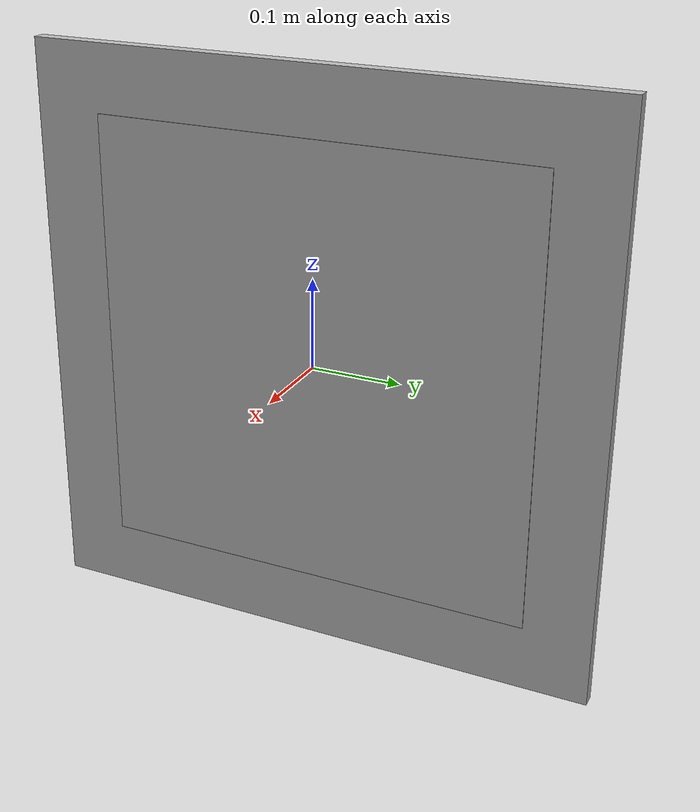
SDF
<?xml version='1.0'?>
<sdf version='1.7'>
  <model name='aruco_combined'>
    <link name='link'>
      <pose>0 0 0 0 -0 0</pose>
      <self_collide>0</self_collide>
      <enable_wind>0</enable_wind>
      <kinematic>0</kinematic>
      <visual name='visual'>
        <geometry>
          <box>
            <size>0.015 0.5 0.5</size>
          </box>
        </geometry>
        <material>
          <script>
            <uri>model://aruco_combined/materials/scripts</uri>
            <uri>model://aruco_combined/materials/textures</uri>
            <name>aruco_combined/Diffuse</name>
          </script>
          <shader type='pixel'/>
        </material>
        <pose>0 0 0 0 -0 0</pose>
        <transparency>0</transparency>
        <cast_shadows>1</cast_shadows>
      </visual>
      <visual name='aruco_frame'>
        <pose>-0.001 0 0 0 -0 0</pose>
        <geometry>
          <box>
            <size>0.015 0.65 0.65</size>
          </box>
        </geometry>
        <material>
          <shader type='pixel'/>
        </material>
        <transparency>0</transparency>
        <cast_shadows>1</cast_shadows>
      </visual>
      <collision name='collision'>
        <laser_retro>0</laser_retro>
        <max_contacts>10</max_contacts>
        <pose>0 0 0 0 -0 0</pose>
        <geometry>
          <box>
            <size>0.015 0.65 0.65</size>
          </box>
        </geometry>
        <surface>
          <friction>
            <ode>
              <mu>1</mu>
              <mu2>1</mu2>
              <fdir1>0 0 0</fdir1>
              <slip1>0</slip1>
              <slip2>0</slip2>
            </ode>
            <torsional>
              <coefficient>1</coefficient>
              <patch_radius>0</patch_radius>
              <surface_radius>0</surface_radius>
              <use_patch_radius>1</use_patch_radius>
              <ode>
                <slip>0</slip>
              </ode>
            </torsional>
          </friction>
          <bounce>
            <restitution_coefficient>0</restitution_coefficient>
            <threshold>1e+06</threshold>
          </bounce>
          <contact>
            <collide_without_contact>0</collide_without_contact>
            <collide_without_contact_bitmask>1</collide_without_contact_bitmask>
            <collide_bitmask>1</collide_bitmask>
            <ode>
              <soft_cfm>0</soft_cfm>
              <soft_erp>0.2</soft_erp>
              <kp>1e+13</kp>
              <kd>1</kd>
              <max_vel>0.01</max_vel>
              <min_depth>0</min_depth>
            </ode>
            <bullet>
              <split_impulse>1</split_impulse>
              <split_impulse_penetration_threshold>-0.01</split_impulse_penetration_threshold>
              <soft_cfm>0</soft_cfm>
              <soft_erp>0.2</soft_erp>
              <kp>1e+13</kp>
              <kd>1</kd>
            </bullet>
          </contact>
        </surface>
      </collision>
    </link>
    <static>1</static>
    <allow_auto_disable>1</allow_auto_disable>
  </model>
</sdf>
